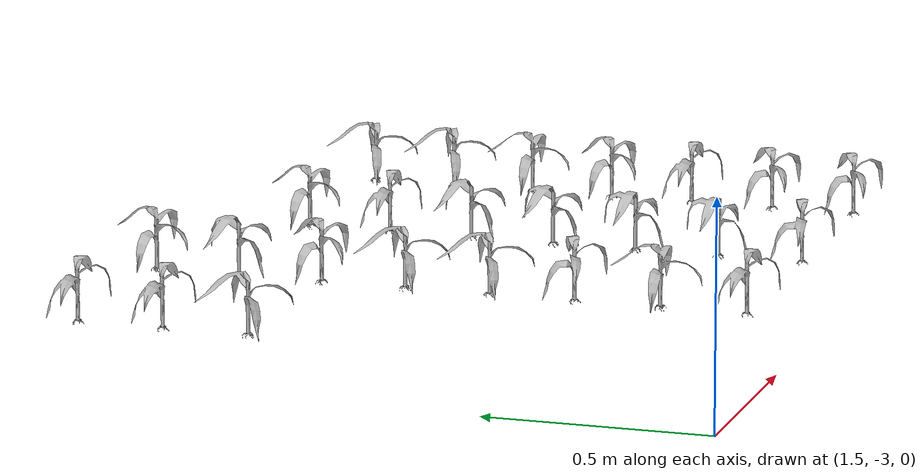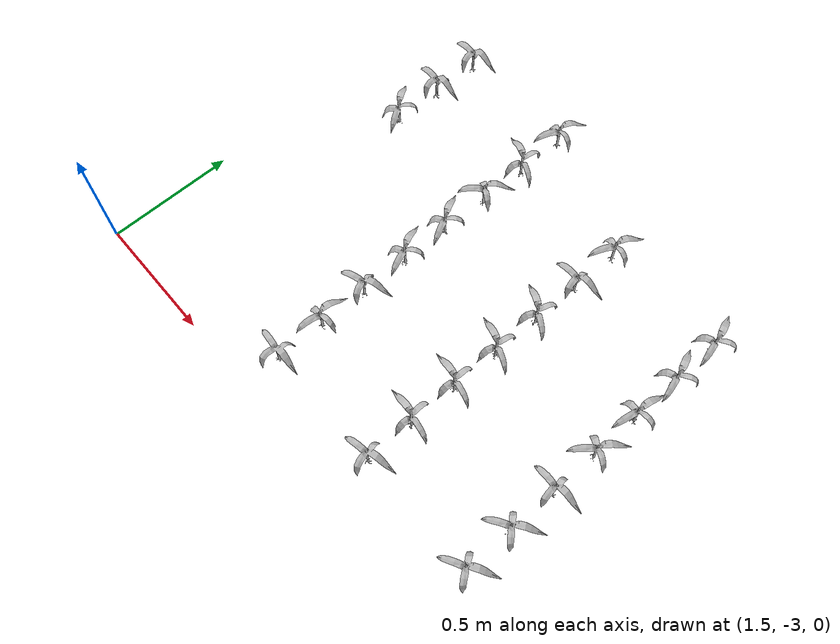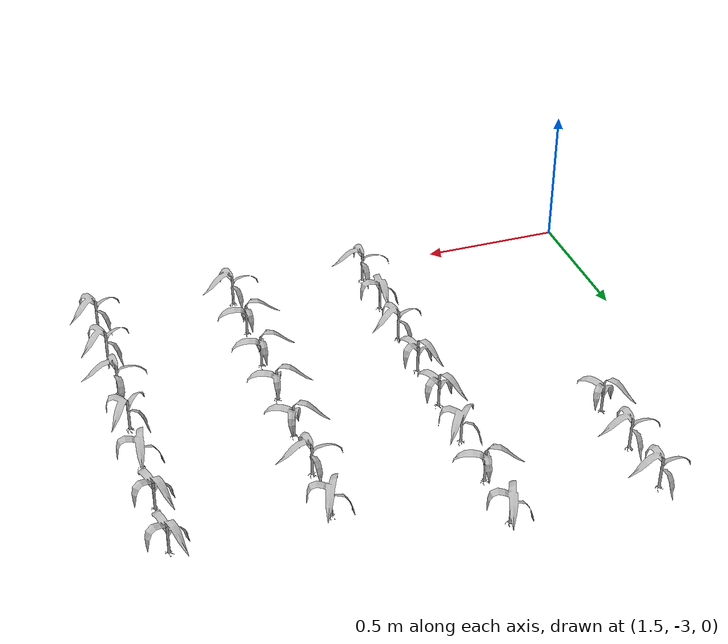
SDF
<sdf version="1.7">
 <world name="default">
  <model name="maize_1.8369094047028893_-1.8749999999999996">
   <static>1</static>
   <link name="link">
    <inertial>
     <mass>0.2</mass>
     <inertia>
      <ixx>0.166667</ixx>
      <ixy>0</ixy>
      <ixz>0</ixz>
      <iyy>0.166667</iyy>
      <iyz>0</iyz>
      <izz>0.166667</izz>
     </inertia>
    </inertial>
    <collision name="collision">
     <geometry><mesh><uri>model://corn_3/meshes/corn.dae</uri><scale>0.25 0.25 0.25</scale></mesh></geometry>
     <surface>
      <friction><ode><mu>0</mu><mu2>0</mu2></ode></friction>
      <contact><ode><kp>0</kp><kd>0</kd><max_vel>0</max_vel><min_depth>0.002</min_depth></ode></contact>
     </surface>
    </collision>
    <visual name="visual">
     <geometry><mesh><uri>model://corn_3/meshes/corn.dae</uri><scale>0.25 0.25 0.25</scale></mesh></geometry>
    </visual>
    <velocity_decay><linear>0</linear><angular>0</angular></velocity_decay>
   </link>
   <pose>1.83691 -1.875 0.05 0 -0 2.22813</pose>
  </model>
  <model name="maize_1.8369094047028893_-1.6799999999999997">
   <static>1</static>
   <link name="link">
    <inertial>
     <mass>0.2</mass>
     <inertia>
      <ixx>0.166667</ixx>
      <ixy>0</ixy>
      <ixz>0</ixz>
      <iyy>0.166667</iyy>
      <iyz>0</iyz>
      <izz>0.166667</izz>
     </inertia>
    </inertial>
    <collision name="collision">
     <geometry><mesh><uri>model://corn_3/meshes/corn.dae</uri><scale>0.25 0.25 0.25</scale></mesh></geometry>
     <surface>
      <friction><ode><mu>0</mu><mu2>0</mu2></ode></friction>
      <contact><ode><kp>0</kp><kd>0</kd><max_vel>0</max_vel><min_depth>0.002</min_depth></ode></contact>
     </surface>
    </collision>
    <visual name="visual">
     <geometry><mesh><uri>model://corn_3/meshes/corn.dae</uri><scale>0.25 0.25 0.25</scale></mesh></geometry>
    </visual>
    <velocity_decay><linear>0</linear><angular>0</angular></velocity_decay>
   </link>
   <pose>1.83691 -1.68 0.05 0 -0 0.077687</pose>
  </model>
  <model name="maize_1.8369094047028893_-1.4849999999999999">
   <static>1</static>
   <link name="link">
    <inertial>
     <mass>0.2</mass>
     <inertia>
      <ixx>0.166667</ixx>
      <ixy>0</ixy>
      <ixz>0</ixz>
      <iyy>0.166667</iyy>
      <iyz>0</iyz>
      <izz>0.166667</izz>
     </inertia>
    </inertial>
    <collision name="collision">
     <geometry><mesh><uri>model://corn_3/meshes/corn.dae</uri><scale>0.25 0.25 0.25</scale></mesh></geometry>
     <surface>
      <friction><ode><mu>0</mu><mu2>0</mu2></ode></friction>
      <contact><ode><kp>0</kp><kd>0</kd><max_vel>0</max_vel><min_depth>0.002</min_depth></ode></contact>
     </surface>
    </collision>
    <visual name="visual">
     <geometry><mesh><uri>model://corn_3/meshes/corn.dae</uri><scale>0.25 0.25 0.25</scale></mesh></geometry>
    </visual>
    <velocity_decay><linear>0</linear><angular>0</angular></velocity_decay>
   </link>
   <pose>1.83691 -1.485 0.05 0 -0 0.12441</pose>
  </model>
  <model name="maize_2.3268572397762357_-2.8499999999999996">
   <static>1</static>
   <link name="link">
    <inertial>
     <mass>0.2</mass>
     <inertia>
      <ixx>0.166667</ixx>
      <ixy>0</ixy>
      <ixz>0</ixz>
      <iyy>0.166667</iyy>
      <iyz>0</iyz>
      <izz>0.166667</izz>
     </inertia>
    </inertial>
    <collision name="collision">
     <geometry><mesh><uri>model://corn_3/meshes/corn.dae</uri><scale>0.25 0.25 0.25</scale></mesh></geometry>
     <surface>
      <friction><ode><mu>0</mu><mu2>0</mu2></ode></friction>
      <contact><ode><kp>0</kp><kd>0</kd><max_vel>0</max_vel><min_depth>0.002</min_depth></ode></contact>
     </surface>
    </collision>
    <visual name="visual">
     <geometry><mesh><uri>model://corn_3/meshes/corn.dae</uri><scale>0.25 0.25 0.25</scale></mesh></geometry>
    </visual>
    <velocity_decay><linear>0</linear><angular>0</angular></velocity_decay>
   </link>
   <pose>2.32686 -2.85 0.05 0 -0 0.009413</pose>
  </model>
  <model name="maize_2.3268572397762357_-2.655">
   <static>1</static>
   <link name="link">
    <inertial>
     <mass>0.2</mass>
     <inertia>
      <ixx>0.166667</ixx>
      <ixy>0</ixy>
      <ixz>0</ixz>
      <iyy>0.166667</iyy>
      <iyz>0</iyz>
      <izz>0.166667</izz>
     </inertia>
    </inertial>
    <collision name="collision">
     <geometry><mesh><uri>model://corn_3/meshes/corn.dae</uri><scale>0.25 0.25 0.25</scale></mesh></geometry>
     <surface>
      <friction><ode><mu>0</mu><mu2>0</mu2></ode></friction>
      <contact><ode><kp>0</kp><kd>0</kd><max_vel>0</max_vel><min_depth>0.002</min_depth></ode></contact>
     </surface>
    </collision>
    <visual name="visual">
     <geometry><mesh><uri>model://corn_3/meshes/corn.dae</uri><scale>0.25 0.25 0.25</scale></mesh></geometry>
    </visual>
    <velocity_decay><linear>0</linear><angular>0</angular></velocity_decay>
   </link>
   <pose>2.32686 -2.655 0.05 0 -0 1.53821</pose>
  </model>
  <model name="maize_2.3268572397762357_-2.46">
   <static>1</static>
   <link name="link">
    <inertial>
     <mass>0.2</mass>
     <inertia>
      <ixx>0.166667</ixx>
      <ixy>0</ixy>
      <ixz>0</ixz>
      <iyy>0.166667</iyy>
      <iyz>0</iyz>
      <izz>0.166667</izz>
     </inertia>
    </inertial>
    <collision name="collision">
     <geometry><mesh><uri>model://corn_3/meshes/corn.dae</uri><scale>0.25 0.25 0.25</scale></mesh></geometry>
     <surface>
      <friction><ode><mu>0</mu><mu2>0</mu2></ode></friction>
      <contact><ode><kp>0</kp><kd>0</kd><max_vel>0</max_vel><min_depth>0.002</min_depth></ode></contact>
     </surface>
    </collision>
    <visual name="visual">
     <geometry><mesh><uri>model://corn_3/meshes/corn.dae</uri><scale>0.25 0.25 0.25</scale></mesh></geometry>
    </visual>
    <velocity_decay><linear>0</linear><angular>0</angular></velocity_decay>
   </link>
   <pose>2.32686 -2.46 0.05 0 -0 0.422488</pose>
  </model>
  <model name="maize_2.3268572397762357_-2.2649999999999997">
   <static>1</static>
   <link name="link">
    <inertial>
     <mass>0.2</mass>
     <inertia>
      <ixx>0.166667</ixx>
      <ixy>0</ixy>
      <ixz>0</ixz>
      <iyy>0.166667</iyy>
      <iyz>0</iyz>
      <izz>0.166667</izz>
     </inertia>
    </inertial>
    <collision name="collision">
     <geometry><mesh><uri>model://corn_3/meshes/corn.dae</uri><scale>0.25 0.25 0.25</scale></mesh></geometry>
     <surface>
      <friction><ode><mu>0</mu><mu2>0</mu2></ode></friction>
      <contact><ode><kp>0</kp><kd>0</kd><max_vel>0</max_vel><min_depth>0.002</min_depth></ode></contact>
     </surface>
    </collision>
    <visual name="visual">
     <geometry><mesh><uri>model://corn_3/meshes/corn.dae</uri><scale>0.25 0.25 0.25</scale></mesh></geometry>
    </visual>
    <velocity_decay><linear>0</linear><angular>0</angular></velocity_decay>
   </link>
   <pose>2.32686 -2.265 0.05 0 -0 2.03936</pose>
  </model>
  <model name="maize_2.3268572397762357_-2.07">
   <static>1</static>
   <link name="link">
    <inertial>
     <mass>0.2</mass>
     <inertia>
      <ixx>0.166667</ixx>
      <ixy>0</ixy>
      <ixz>0</ixz>
      <iyy>0.166667</iyy>
      <iyz>0</iyz>
      <izz>0.166667</izz>
     </inertia>
    </inertial>
    <collision name="collision">
     <geometry><mesh><uri>model://corn_3/meshes/corn.dae</uri><scale>0.25 0.25 0.25</scale></mesh></geometry>
     <surface>
      <friction><ode><mu>0</mu><mu2>0</mu2></ode></friction>
      <contact><ode><kp>0</kp><kd>0</kd><max_vel>0</max_vel><min_depth>0.002</min_depth></ode></contact>
     </surface>
    </collision>
    <visual name="visual">
     <geometry><mesh><uri>model://corn_3/meshes/corn.dae</uri><scale>0.25 0.25 0.25</scale></mesh></geometry>
    </visual>
    <velocity_decay><linear>0</linear><angular>0</angular></velocity_decay>
   </link>
   <pose>2.32686 -2.07 0.05 0 -0 2.10948</pose>
  </model>
  <model name="maize_2.3268572397762357_-1.8749999999999996">
   <static>1</static>
   <link name="link">
    <inertial>
     <mass>0.2</mass>
     <inertia>
      <ixx>0.166667</ixx>
      <ixy>0</ixy>
      <ixz>0</ixz>
      <iyy>0.166667</iyy>
      <iyz>0</iyz>
      <izz>0.166667</izz>
     </inertia>
    </inertial>
    <collision name="collision">
     <geometry><mesh><uri>model://corn_3/meshes/corn.dae</uri><scale>0.25 0.25 0.25</scale></mesh></geometry>
     <surface>
      <friction><ode><mu>0</mu><mu2>0</mu2></ode></friction>
      <contact><ode><kp>0</kp><kd>0</kd><max_vel>0</max_vel><min_depth>0.002</min_depth></ode></contact>
     </surface>
    </collision>
    <visual name="visual">
     <geometry><mesh><uri>model://corn_3/meshes/corn.dae</uri><scale>0.25 0.25 0.25</scale></mesh></geometry>
    </visual>
    <velocity_decay><linear>0</linear><angular>0</angular></velocity_decay>
   </link>
   <pose>2.32686 -1.875 0.05 0 -0 0.924338</pose>
  </model>
  <model name="maize_2.3268572397762357_-1.6799999999999997">
   <static>1</static>
   <link name="link">
    <inertial>
     <mass>0.2</mass>
     <inertia>
      <ixx>0.166667</ixx>
      <ixy>0</ixy>
      <ixz>0</ixz>
      <iyy>0.166667</iyy>
      <iyz>0</iyz>
      <izz>0.166667</izz>
     </inertia>
    </inertial>
    <collision name="collision">
     <geometry><mesh><uri>model://corn_3/meshes/corn.dae</uri><scale>0.25 0.25 0.25</scale></mesh></geometry>
     <surface>
      <friction><ode><mu>0</mu><mu2>0</mu2></ode></friction>
      <contact><ode><kp>0</kp><kd>0</kd><max_vel>0</max_vel><min_depth>0.002</min_depth></ode></contact>
     </surface>
    </collision>
    <visual name="visual">
     <geometry><mesh><uri>model://corn_3/meshes/corn.dae</uri><scale>0.25 0.25 0.25</scale></mesh></geometry>
    </visual>
    <velocity_decay><linear>0</linear><angular>0</angular></velocity_decay>
   </link>
   <pose>2.32686 -1.68 0.05 0 -0 2.79094</pose>
  </model>
  <model name="maize_2.3268572397762357_-1.4849999999999999">
   <static>1</static>
   <link name="link">
    <inertial>
     <mass>0.2</mass>
     <inertia>
      <ixx>0.166667</ixx>
      <ixy>0</ixy>
      <ixz>0</ixz>
      <iyy>0.166667</iyy>
      <iyz>0</iyz>
      <izz>0.166667</izz>
     </inertia>
    </inertial>
    <collision name="collision">
     <geometry><mesh><uri>model://corn_3/meshes/corn.dae</uri><scale>0.25 0.25 0.25</scale></mesh></geometry>
     <surface>
      <friction><ode><mu>0</mu><mu2>0</mu2></ode></friction>
      <contact><ode><kp>0</kp><kd>0</kd><max_vel>0</max_vel><min_depth>0.002</min_depth></ode></contact>
     </surface>
    </collision>
    <visual name="visual">
     <geometry><mesh><uri>model://corn_3/meshes/corn.dae</uri><scale>0.25 0.25 0.25</scale></mesh></geometry>
    </visual>
    <velocity_decay><linear>0</linear><angular>0</angular></velocity_decay>
   </link>
   <pose>2.32686 -1.485 0.05 0 -0 1.23408</pose>
  </model>
  <model name="maize_2.816066532335432_-2.8499999999999996">
   <static>1</static>
   <link name="link">
    <inertial>
     <mass>0.2</mass>
     <inertia>
      <ixx>0.166667</ixx>
      <ixy>0</ixy>
      <ixz>0</ixz>
      <iyy>0.166667</iyy>
      <iyz>0</iyz>
      <izz>0.166667</izz>
     </inertia>
    </inertial>
    <collision name="collision">
     <geometry><mesh><uri>model://corn_3/meshes/corn.dae</uri><scale>0.25 0.25 0.25</scale></mesh></geometry>
     <surface>
      <friction><ode><mu>0</mu><mu2>0</mu2></ode></friction>
      <contact><ode><kp>0</kp><kd>0</kd><max_vel>0</max_vel><min_depth>0.002</min_depth></ode></contact>
     </surface>
    </collision>
    <visual name="visual">
     <geometry><mesh><uri>model://corn_3/meshes/corn.dae</uri><scale>0.25 0.25 0.25</scale></mesh></geometry>
    </visual>
    <velocity_decay><linear>0</linear><angular>0</angular></velocity_decay>
   </link>
   <pose>2.81607 -2.85 0.05 0 -0 0.282666</pose>
  </model>
  <model name="maize_2.816066532335432_-2.655">
   <static>1</static>
   <link name="link">
    <inertial>
     <mass>0.2</mass>
     <inertia>
      <ixx>0.166667</ixx>
      <ixy>0</ixy>
      <ixz>0</ixz>
      <iyy>0.166667</iyy>
      <iyz>0</iyz>
      <izz>0.166667</izz>
     </inertia>
    </inertial>
    <collision name="collision">
     <geometry><mesh><uri>model://corn_3/meshes/corn.dae</uri><scale>0.25 0.25 0.25</scale></mesh></geometry>
     <surface>
      <friction><ode><mu>0</mu><mu2>0</mu2></ode></friction>
      <contact><ode><kp>0</kp><kd>0</kd><max_vel>0</max_vel><min_depth>0.002</min_depth></ode></contact>
     </surface>
    </collision>
    <visual name="visual">
     <geometry><mesh><uri>model://corn_3/meshes/corn.dae</uri><scale>0.25 0.25 0.25</scale></mesh></geometry>
    </visual>
    <velocity_decay><linear>0</linear><angular>0</angular></velocity_decay>
   </link>
   <pose>2.81607 -2.655 0.05 0 -0 3.06639</pose>
  </model>
  <model name="maize_2.816066532335432_-2.46">
   <static>1</static>
   <link name="link">
    <inertial>
     <mass>0.2</mass>
     <inertia>
      <ixx>0.166667</ixx>
      <ixy>0</ixy>
      <ixz>0</ixz>
      <iyy>0.166667</iyy>
      <iyz>0</iyz>
      <izz>0.166667</izz>
     </inertia>
    </inertial>
    <collision name="collision">
     <geometry><mesh><uri>model://corn_3/meshes/corn.dae</uri><scale>0.25 0.25 0.25</scale></mesh></geometry>
     <surface>
      <friction><ode><mu>0</mu><mu2>0</mu2></ode></friction>
      <contact><ode><kp>0</kp><kd>0</kd><max_vel>0</max_vel><min_depth>0.002</min_depth></ode></contact>
     </surface>
    </collision>
    <visual name="visual">
     <geometry><mesh><uri>model://corn_3/meshes/corn.dae</uri><scale>0.25 0.25 0.25</scale></mesh></geometry>
    </visual>
    <velocity_decay><linear>0</linear><angular>0</angular></velocity_decay>
   </link>
   <pose>2.81607 -2.46 0.05 0 -0 3.00756</pose>
  </model>
  <model name="maize_2.816066532335432_-2.2649999999999997">
   <static>1</static>
   <link name="link">
    <inertial>
     <mass>0.2</mass>
     <inertia>
      <ixx>0.166667</ixx>
      <ixy>0</ixy>
      <ixz>0</ixz>
      <iyy>0.166667</iyy>
      <iyz>0</iyz>
      <izz>0.166667</izz>
     </inertia>
    </inertial>
    <collision name="collision">
     <geometry><mesh><uri>model://corn_3/meshes/corn.dae</uri><scale>0.25 0.25 0.25</scale></mesh></geometry>
     <surface>
      <friction><ode><mu>0</mu><mu2>0</mu2></ode></friction>
      <contact><ode><kp>0</kp><kd>0</kd><max_vel>0</max_vel><min_depth>0.002</min_depth></ode></contact>
     </surface>
    </collision>
    <visual name="visual">
     <geometry><mesh><uri>model://corn_3/meshes/corn.dae</uri><scale>0.25 0.25 0.25</scale></mesh></geometry>
    </visual>
    <velocity_decay><linear>0</linear><angular>0</angular></velocity_decay>
   </link>
   <pose>2.81607 -2.265 0.05 0 -0 2.82736</pose>
  </model>
  <model name="maize_2.816066532335432_-2.07">
   <static>1</static>
   <link name="link">
    <inertial>
     <mass>0.2</mass>
     <inertia>
      <ixx>0.166667</ixx>
      <ixy>0</ixy>
      <ixz>0</ixz>
      <iyy>0.166667</iyy>
      <iyz>0</iyz>
      <izz>0.166667</izz>
     </inertia>
    </inertial>
    <collision name="collision">
     <geometry><mesh><uri>model://corn_3/meshes/corn.dae</uri><scale>0.25 0.25 0.25</scale></mesh></geometry>
     <surface>
      <friction><ode><mu>0</mu><mu2>0</mu2></ode></friction>
      <contact><ode><kp>0</kp><kd>0</kd><max_vel>0</max_vel><min_depth>0.002</min_depth></ode></contact>
     </surface>
    </collision>
    <visual name="visual">
     <geometry><mesh><uri>model://corn_3/meshes/corn.dae</uri><scale>0.25 0.25 0.25</scale></mesh></geometry>
    </visual>
    <velocity_decay><linear>0</linear><angular>0</angular></velocity_decay>
   </link>
   <pose>2.81607 -2.07 0.05 0 -0 2.67458</pose>
  </model>
  <model name="maize_2.816066532335432_-1.8749999999999996">
   <static>1</static>
   <link name="link">
    <inertial>
     <mass>0.2</mass>
     <inertia>
      <ixx>0.166667</ixx>
      <ixy>0</ixy>
      <ixz>0</ixz>
      <iyy>0.166667</iyy>
      <iyz>0</iyz>
      <izz>0.166667</izz>
     </inertia>
    </inertial>
    <collision name="collision">
     <geometry><mesh><uri>model://corn_3/meshes/corn.dae</uri><scale>0.25 0.25 0.25</scale></mesh></geometry>
     <surface>
      <friction><ode><mu>0</mu><mu2>0</mu2></ode></friction>
      <contact><ode><kp>0</kp><kd>0</kd><max_vel>0</max_vel><min_depth>0.002</min_depth></ode></contact>
     </surface>
    </collision>
    <visual name="visual">
     <geometry><mesh><uri>model://corn_3/meshes/corn.dae</uri><scale>0.25 0.25 0.25</scale></mesh></geometry>
    </visual>
    <velocity_decay><linear>0</linear><angular>0</angular></velocity_decay>
   </link>
   <pose>2.81607 -1.875 0.05 0 -0 0.132507</pose>
  </model>
  <model name="maize_2.816066532335432_-1.6799999999999997">
   <static>1</static>
   <link name="link">
    <inertial>
     <mass>0.2</mass>
     <inertia>
      <ixx>0.166667</ixx>
      <ixy>0</ixy>
      <ixz>0</ixz>
      <iyy>0.166667</iyy>
      <iyz>0</iyz>
      <izz>0.166667</izz>
     </inertia>
    </inertial>
    <collision name="collision">
     <geometry><mesh><uri>model://corn_3/meshes/corn.dae</uri><scale>0.25 0.25 0.25</scale></mesh></geometry>
     <surface>
      <friction><ode><mu>0</mu><mu2>0</mu2></ode></friction>
      <contact><ode><kp>0</kp><kd>0</kd><max_vel>0</max_vel><min_depth>0.002</min_depth></ode></contact>
     </surface>
    </collision>
    <visual name="visual">
     <geometry><mesh><uri>model://corn_3/meshes/corn.dae</uri><scale>0.25 0.25 0.25</scale></mesh></geometry>
    </visual>
    <velocity_decay><linear>0</linear><angular>0</angular></velocity_decay>
   </link>
   <pose>2.81607 -1.68 0.05 0 -0 1.21734</pose>
  </model>
  <model name="maize_3.304538114598593_-2.8499999999999996">
   <static>1</static>
   <link name="link">
    <inertial>
     <mass>0.2</mass>
     <inertia>
      <ixx>0.166667</ixx>
      <ixy>0</ixy>
      <ixz>0</ixz>
      <iyy>0.166667</iyy>
      <iyz>0</iyz>
      <izz>0.166667</izz>
     </inertia>
    </inertial>
    <collision name="collision">
     <geometry><mesh><uri>model://corn_3/meshes/corn.dae</uri><scale>0.25 0.25 0.25</scale></mesh></geometry>
     <surface>
      <friction><ode><mu>0</mu><mu2>0</mu2></ode></friction>
      <contact><ode><kp>0</kp><kd>0</kd><max_vel>0</max_vel><min_depth>0.002</min_depth></ode></contact>
     </surface>
    </collision>
    <visual name="visual">
     <geometry><mesh><uri>model://corn_3/meshes/corn.dae</uri><scale>0.25 0.25 0.25</scale></mesh></geometry>
    </visual>
    <velocity_decay><linear>0</linear><angular>0</angular></velocity_decay>
   </link>
   <pose>3.30454 -2.85 0.05 0 -0 0.589553</pose>
  </model>
  <model name="maize_3.304538114598593_-2.655">
   <static>1</static>
   <link name="link">
    <inertial>
     <mass>0.2</mass>
     <inertia>
      <ixx>0.166667</ixx>
      <ixy>0</ixy>
      <ixz>0</ixz>
      <iyy>0.166667</iyy>
      <iyz>0</iyz>
      <izz>0.166667</izz>
     </inertia>
    </inertial>
    <collision name="collision">
     <geometry><mesh><uri>model://corn_3/meshes/corn.dae</uri><scale>0.25 0.25 0.25</scale></mesh></geometry>
     <surface>
      <friction><ode><mu>0</mu><mu2>0</mu2></ode></friction>
      <contact><ode><kp>0</kp><kd>0</kd><max_vel>0</max_vel><min_depth>0.002</min_depth></ode></contact>
     </surface>
    </collision>
    <visual name="visual">
     <geometry><mesh><uri>model://corn_3/meshes/corn.dae</uri><scale>0.25 0.25 0.25</scale></mesh></geometry>
    </visual>
    <velocity_decay><linear>0</linear><angular>0</angular></velocity_decay>
   </link>
   <pose>3.30454 -2.655 0.05 0 -0 0.664203</pose>
  </model>
  <model name="maize_3.304538114598593_-2.46">
   <static>1</static>
   <link name="link">
    <inertial>
     <mass>0.2</mass>
     <inertia>
      <ixx>0.166667</ixx>
      <ixy>0</ixy>
      <ixz>0</ixz>
      <iyy>0.166667</iyy>
      <iyz>0</iyz>
      <izz>0.166667</izz>
     </inertia>
    </inertial>
    <collision name="collision">
     <geometry><mesh><uri>model://corn_3/meshes/corn.dae</uri><scale>0.25 0.25 0.25</scale></mesh></geometry>
     <surface>
      <friction><ode><mu>0</mu><mu2>0</mu2></ode></friction>
      <contact><ode><kp>0</kp><kd>0</kd><max_vel>0</max_vel><min_depth>0.002</min_depth></ode></contact>
     </surface>
    </collision>
    <visual name="visual">
     <geometry><mesh><uri>model://corn_3/meshes/corn.dae</uri><scale>0.25 0.25 0.25</scale></mesh></geometry>
    </visual>
    <velocity_decay><linear>0</linear><angular>0</angular></velocity_decay>
   </link>
   <pose>3.30454 -2.46 0.05 0 -0 0.074036</pose>
  </model>
  <model name="maize_3.304538114598593_-2.2649999999999997">
   <static>1</static>
   <link name="link">
    <inertial>
     <mass>0.2</mass>
     <inertia>
      <ixx>0.166667</ixx>
      <ixy>0</ixy>
      <ixz>0</ixz>
      <iyy>0.166667</iyy>
      <iyz>0</iyz>
      <izz>0.166667</izz>
     </inertia>
    </inertial>
    <collision name="collision">
     <geometry><mesh><uri>model://corn_3/meshes/corn.dae</uri><scale>0.25 0.25 0.25</scale></mesh></geometry>
     <surface>
      <friction><ode><mu>0</mu><mu2>0</mu2></ode></friction>
      <contact><ode><kp>0</kp><kd>0</kd><max_vel>0</max_vel><min_depth>0.002</min_depth></ode></contact>
     </surface>
    </collision>
    <visual name="visual">
     <geometry><mesh><uri>model://corn_3/meshes/corn.dae</uri><scale>0.25 0.25 0.25</scale></mesh></geometry>
    </visual>
    <velocity_decay><linear>0</linear><angular>0</angular></velocity_decay>
   </link>
   <pose>3.30454 -2.265 0.05 0 -0 0.971733</pose>
  </model>
  <model name="maize_3.304538114598593_-2.07">
   <static>1</static>
   <link name="link">
    <inertial>
     <mass>0.2</mass>
     <inertia>
      <ixx>0.166667</ixx>
      <ixy>0</ixy>
      <ixz>0</ixz>
      <iyy>0.166667</iyy>
      <iyz>0</iyz>
      <izz>0.166667</izz>
     </inertia>
    </inertial>
    <collision name="collision">
     <geometry><mesh><uri>model://corn_3/meshes/corn.dae</uri><scale>0.25 0.25 0.25</scale></mesh></geometry>
     <surface>
      <friction><ode><mu>0</mu><mu2>0</mu2></ode></friction>
      <contact><ode><kp>0</kp><kd>0</kd><max_vel>0</max_vel><min_depth>0.002</min_depth></ode></contact>
     </surface>
    </collision>
    <visual name="visual">
     <geometry><mesh><uri>model://corn_3/meshes/corn.dae</uri><scale>0.25 0.25 0.25</scale></mesh></geometry>
    </visual>
    <velocity_decay><linear>0</linear><angular>0</angular></velocity_decay>
   </link>
   <pose>3.30454 -2.07 0.05 0 -0 1.46237</pose>
  </model>
  <model name="maize_3.304538114598593_-1.8749999999999996">
   <static>1</static>
   <link name="link">
    <inertial>
     <mass>0.2</mass>
     <inertia>
      <ixx>0.166667</ixx>
      <ixy>0</ixy>
      <ixz>0</ixz>
      <iyy>0.166667</iyy>
      <iyz>0</iyz>
      <izz>0.166667</izz>
     </inertia>
    </inertial>
    <collision name="collision">
     <geometry><mesh><uri>model://corn_3/meshes/corn.dae</uri><scale>0.25 0.25 0.25</scale></mesh></geometry>
     <surface>
      <friction><ode><mu>0</mu><mu2>0</mu2></ode></friction>
      <contact><ode><kp>0</kp><kd>0</kd><max_vel>0</max_vel><min_depth>0.002</min_depth></ode></contact>
     </surface>
    </collision>
    <visual name="visual">
     <geometry><mesh><uri>model://corn_3/meshes/corn.dae</uri><scale>0.25 0.25 0.25</scale></mesh></geometry>
    </visual>
    <velocity_decay><linear>0</linear><angular>0</angular></velocity_decay>
   </link>
   <pose>3.30454 -1.875 0.05 0 -0 1.94751</pose>
  </model>
  <model name="maize_3.304538114598593_-1.6799999999999997">
   <static>1</static>
   <link name="link">
    <inertial>
     <mass>0.2</mass>
     <inertia>
      <ixx>0.166667</ixx>
      <ixy>0</ixy>
      <ixz>0</ixz>
      <iyy>0.166667</iyy>
      <iyz>0</iyz>
      <izz>0.166667</izz>
     </inertia>
    </inertial>
    <collision name="collision">
     <geometry><mesh><uri>model://corn_3/meshes/corn.dae</uri><scale>0.25 0.25 0.25</scale></mesh></geometry>
     <surface>
      <friction><ode><mu>0</mu><mu2>0</mu2></ode></friction>
      <contact><ode><kp>0</kp><kd>0</kd><max_vel>0</max_vel><min_depth>0.002</min_depth></ode></contact>
     </surface>
    </collision>
    <visual name="visual">
     <geometry><mesh><uri>model://corn_3/meshes/corn.dae</uri><scale>0.25 0.25 0.25</scale></mesh></geometry>
    </visual>
    <velocity_decay><linear>0</linear><angular>0</angular></velocity_decay>
   </link>
   <pose>3.30454 -1.68 0.05 0 -0 1.91827</pose>
  </model>
 </world>
</sdf>
